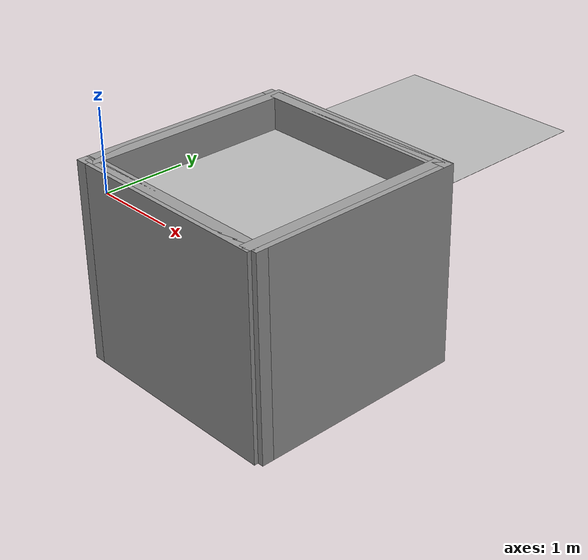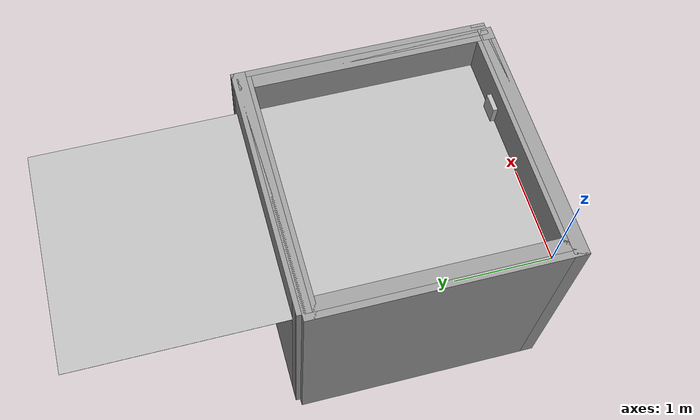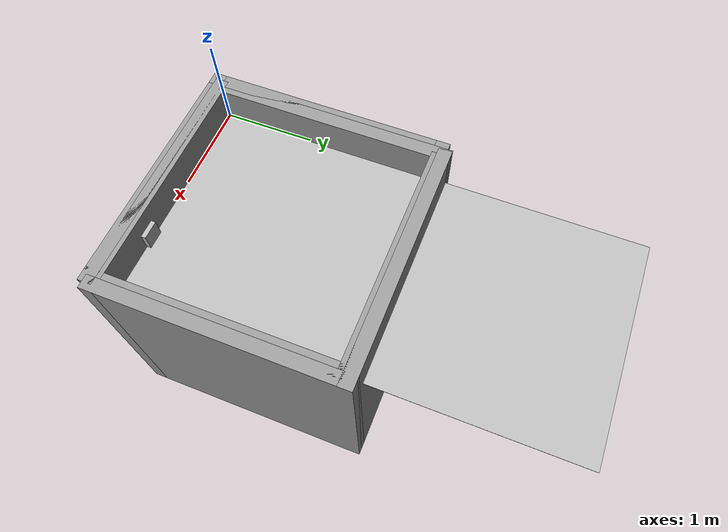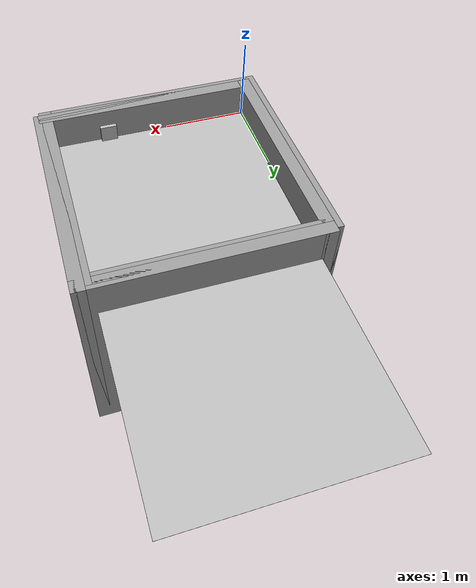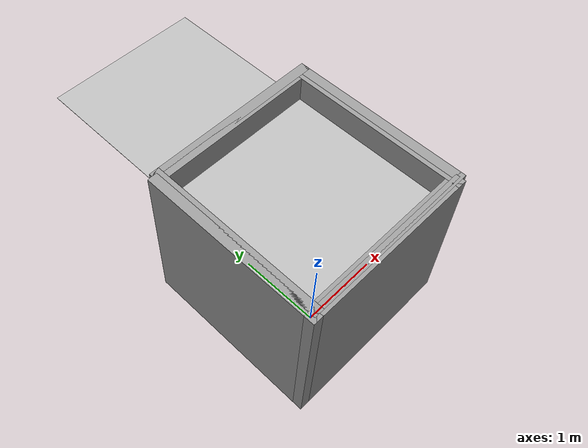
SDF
<sdf version="1.6">
 <world name="default">
  <light name="sun" type="directional">
   <pose>0 0 10 0 -0 0</pose>
   <diffuse>0.8 0.8 0.8 1</diffuse>
   <specular>0.2 0.2 0.2 1</specular>
   <attenuation>
    <range>1000</range>
    <constant>0.9</constant>
    <linear>0.01</linear>
    <quadratic>0.001</quadratic>
   </attenuation>
   <direction>-0.5 0.1 -0.9</direction>
  </light>
  <gravity>0 0 -9.8</gravity>
  <magnetic_field>6e-06 2.3e-05 -4.2e-05</magnetic_field>
  <atmosphere type="adiabatic"/>
  <physics name="default_physics" default="0" type="ode">
   <max_step_size>0.001</max_step_size>
   <real_time_factor>1</real_time_factor>
   <real_time_update_rate>1000</real_time_update_rate>
  </physics>
  <scene><ambient>0.4 0.4 0.4 1</ambient><background>0.7 0.7 0.7 1</background><shadows>1</shadows></scene>
  <audio><device>default</device></audio>
  <spherical_coordinates>
   <surface_model>EARTH_WGS84</surface_model>
   <latitude_deg>0</latitude_deg>
   <longitude_deg>0</longitude_deg>
   <elevation>0</elevation>
   <heading_deg>0</heading_deg>
  </spherical_coordinates>
  <model name="my_ground_plane">
   <static>1</static>
   <link name="link">
    <collision name="collision">
     <geometry><plane><normal>0 0 1</normal><size>2.4 4.8</size></plane></geometry>
     <surface><friction><ode><mu>100</mu><mu2>50</mu2></ode></friction></surface>
    </collision>
    <visual name="visual">
     <cast_shadows>0</cast_shadows>
     <geometry><plane><normal>0 0 1</normal><size>2.4 4.8</size></plane></geometry>
     <material>
      <script>
       <uri>model://my_ground_plane/materials/scripts</uri>
       <uri>model://my_ground_plane/materials/textures/</uri>
       <name>MyGroundPlane/Image</name>
      </script>
     </material>
    </visual>
   </link>
   <pose>1.2 2.4 0 0 -0 0</pose>
  </model>
  <model name="wall">
   <pose>1.24358 1.22026 -2.1 0 -0 0</pose>
   <link name="Wall_11">
    <collision name="Wall_11_Collision">
     <geometry><box><size>2.75 0.15 2.5</size></box></geometry>
     <pose>0 0 1.25 0 -0 0</pose>
    </collision>
    <visual name="Wall_11_Visual">
     <pose>0 0 1.25 0 -0 0</pose>
     <geometry><box><size>2.75 0.15 2.5</size></box></geometry>
     <material>
      <script><uri>file://media/materials/scripts/gazebo.material</uri><name>Gazebo/Grey</name></script>
      <ambient>1 1 1 1</ambient>
     </material>
     <meta><layer>0</layer></meta>
    </visual>
    <pose>0 1.3 0 0 -0 0</pose>
   </link>
   <link name="Wall_12">
    <collision name="Wall_12_Collision">
     <geometry><box><size>2.75 0.15 2.5</size></box></geometry>
     <pose>0 0 1.25 0 -0 0</pose>
    </collision>
    <visual name="Wall_12_Visual">
     <pose>0 0 1.25 0 -0 0</pose>
     <geometry><box><size>2.75 0.15 2.5</size></box></geometry>
     <material>
      <script><uri>file://media/materials/scripts/gazebo.material</uri><name>Gazebo/Grey</name></script>
      <ambient>1 1 1 1</ambient>
     </material>
     <meta><layer>0</layer></meta>
    </visual>
    <pose>1.3 0 0 0 -0 -1.5708</pose>
   </link>
   <link name="Wall_4">
    <collision name="Wall_4_Collision">
     <geometry><box><size>2.75 0.15 2.5</size></box></geometry>
     <pose>0 0 1.25 0 -0 0</pose>
    </collision>
    <visual name="Wall_4_Visual">
     <pose>0 0 1.25 0 -0 0</pose>
     <geometry><box><size>2.75 0.15 2.5</size></box></geometry>
     <material>
      <script><uri>file://media/materials/scripts/gazebo.material</uri><name>Gazebo/Grey</name></script>
      <ambient>1 1 1 1</ambient>
     </material>
     <meta><layer>0</layer></meta>
    </visual>
    <pose>0 -1.3 0 0 -0 3.14159</pose>
   </link>
   <link name="Wall_9">
    <collision name="Wall_9_Collision">
     <geometry><box><size>2.75 0.15 2.5</size></box></geometry>
     <pose>0 0 1.25 0 -0 0</pose>
    </collision>
    <visual name="Wall_9_Visual">
     <pose>0 0 1.25 0 -0 0</pose>
     <geometry><box><size>2.75 0.15 2.5</size></box></geometry>
     <material>
      <script><uri>file://media/materials/scripts/gazebo.material</uri><name>Gazebo/Grey</name></script>
      <ambient>1 1 1 1</ambient>
     </material>
     <meta><layer>0</layer></meta>
    </visual>
    <pose>-1.3 0 0 0 -0 1.5708</pose>
   </link>
   <static>1</static>
  </model>
  <model name="wall_0">
   <pose>1.17313 1.16946 -2.1 0 -0 0</pose>
   <link name="Wall_11">
    <collision name="Wall_11_Collision">
     <geometry><box><size>2.75 0.15 2.5</size></box></geometry>
     <pose>0 0 1.25 0 -0 0</pose>
    </collision>
    <visual name="Wall_11_Visual">
     <pose>0 0 1.25 0 -0 0</pose>
     <geometry><box><size>2.75 0.15 2.5</size></box></geometry>
     <material>
      <script><uri>file://media/materials/scripts/gazebo.material</uri><name>Gazebo/Grey</name></script>
      <ambient>1 1 1 1</ambient>
     </material>
     <meta><layer>0</layer></meta>
    </visual>
    <pose>0 1.3 0 0 -0 0</pose>
   </link>
   <link name="Wall_12">
    <collision name="Wall_12_Collision">
     <geometry><box><size>2.75 0.15 2.5</size></box></geometry>
     <pose>0 0 1.25 0 -0 0</pose>
    </collision>
    <visual name="Wall_12_Visual">
     <pose>0 0 1.25 0 -0 0</pose>
     <geometry><box><size>2.75 0.15 2.5</size></box></geometry>
     <material>
      <script><uri>file://media/materials/scripts/gazebo.material</uri><name>Gazebo/Grey</name></script>
      <ambient>1 1 1 1</ambient>
     </material>
     <meta><layer>0</layer></meta>
    </visual>
    <pose>1.3 0 0 0 -0 -1.5708</pose>
   </link>
   <link name="Wall_4">
    <collision name="Wall_4_Collision">
     <geometry><box><size>2.75 0.15 2.5</size></box></geometry>
     <pose>0 0 1.25 0 -0 0</pose>
    </collision>
    <visual name="Wall_4_Visual">
     <pose>0 0 1.25 0 -0 0</pose>
     <geometry><box><size>2.75 0.15 2.5</size></box></geometry>
     <material>
      <script><uri>file://media/materials/scripts/gazebo.material</uri><name>Gazebo/Grey</name></script>
      <ambient>1 1 1 1</ambient>
     </material>
     <meta><layer>0</layer></meta>
    </visual>
    <pose>0 -1.3 0 0 -0 3.14159</pose>
   </link>
   <link name="Wall_9">
    <collision name="Wall_9_Collision">
     <geometry><box><size>2.75 0.15 2.5</size></box></geometry>
     <pose>0 0 1.25 0 -0 0</pose>
    </collision>
    <visual name="Wall_9_Visual">
     <pose>0 0 1.25 0 -0 0</pose>
     <geometry><box><size>2.75 0.15 2.5</size></box></geometry>
     <material>
      <script><uri>file://media/materials/scripts/gazebo.material</uri><name>Gazebo/Grey</name></script>
      <ambient>1 1 1 1</ambient>
     </material>
     <meta><layer>0</layer></meta>
    </visual>
    <pose>-1.3 0 0 0 -0 1.5708</pose>
   </link>
   <static>1</static>
  </model>
  <model name="textured_shapes">
   <pose>1.75377 0.020308 0.100002 -1.45036 1.57078 -3.02096</pose>
   <link name="box">
    <collision name="collision"><geometry><box><size>0.2 0.2 0.05</size></box></geometry></collision>
    <visual name="visual">
     <geometry><box><size>0.2 0.2 0.05</size></box></geometry>
     <material>
      <script>
       <uri>model://textured_shapes/materials/scripts</uri>
       <uri>model://textured_shapes/materials/textures</uri>
       <name>TexturedShape/Squares</name>
      </script>
     </material>
    </visual>
    <inertial>
     <inertia><ixx>1</ixx><ixy>0</ixy><ixz>0</ixz><iyy>1</iyy><iyz>0</iyz><izz>1</izz></inertia>
     <mass>1</mass>
    </inertial>
   </link>
  </model>
 </world>
</sdf>
